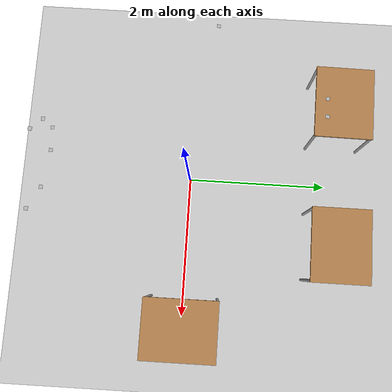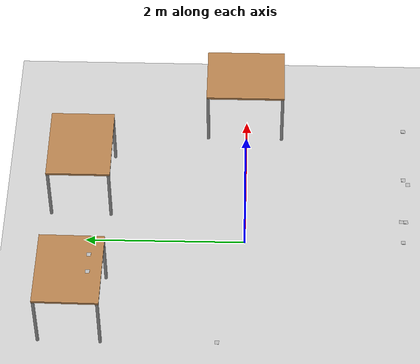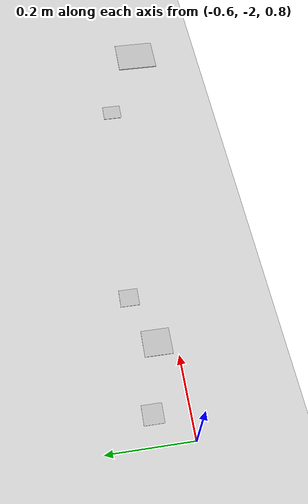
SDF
<sdf version="1.6">
 <world name="default">
  <plugin name="ros_link_attacher_plugin" filename="libgazebo_ros_link_attacher.so"/>
  <light name="sun" type="directional">
   <pose>0 0 10 0 -0 0</pose>
   <diffuse>0.8 0.8 0.8 1</diffuse>
   <specular>0.2 0.2 0.2 1</specular>
   <attenuation>
    <range>1000</range>
    <constant>0.9</constant>
    <linear>0.01</linear>
    <quadratic>0.001</quadratic>
   </attenuation>
   <direction>-0.5 0.1 -0.9</direction>
  </light>
  <model name="ground_plane">
   <static>1</static>
   <link name="link">
    <collision name="collision">
     <geometry><plane><normal>0 0 1</normal><size>100 100</size></plane></geometry>
     <surface>
      <contact><collide_bitmask>65535</collide_bitmask></contact>
      <friction><ode><mu>100</mu><mu2>50</mu2></ode></friction>
     </surface>
    </collision>
    <visual name="visual">
     <cast_shadows>0</cast_shadows>
     <geometry><plane><normal>0 0 1</normal><size>100 100</size></plane></geometry>
     <material>
      <script><uri>file://media/materials/scripts/gazebo.material</uri><name>Gazebo/Grey</name></script>
     </material>
    </visual>
   </link>
  </model>
  <gravity>0 0 -9.8</gravity>
  <magnetic_field>6e-06 2.3e-05 -4.2e-05</magnetic_field>
  <atmosphere type="adiabatic"/>
  <physics name="default_physics" default="0" type="ode">
   <max_step_size>0.001</max_step_size>
   <real_time_factor>1</real_time_factor>
   <real_time_update_rate>1000</real_time_update_rate>
  </physics>
  <scene><ambient>0.4 0.4 0.4 1</ambient><background>0.7 0.7 0.7 1</background><shadows>1</shadows></scene>
  <audio><device>default</device></audio>
  <spherical_coordinates>
   <surface_model>EARTH_WGS84</surface_model>
   <latitude_deg>0</latitude_deg>
   <longitude_deg>0</longitude_deg>
   <elevation>0</elevation>
   <heading_deg>0</heading_deg>
  </spherical_coordinates>
  <model name="table">
   <static>1</static>
   <link name="link">
    <collision name="surface">
     <pose>0 0 0.8 0 -0 0</pose>
     <geometry><box><size>1 0.8 0.03</size></box></geometry>
    </collision>
    <visual name="visual1">
     <pose>0 0 0.8 0 -0 0</pose>
     <geometry><box><size>1 0.8 0.03</size></box></geometry>
     <material>
      <script><uri>file://media/materials/scripts/gazebo.material</uri><name>Gazebo/Wood</name></script>
     </material>
    </visual>
    <collision name="front_left_leg">
     <pose>0.48 0.38 0.4 0 -0 0</pose>
     <geometry><cylinder><radius>0.02</radius><length>0.8</length></cylinder></geometry>
    </collision>
    <visual name="front_left_leg">
     <pose>0.48 0.38 0.4 0 -0 0</pose>
     <geometry><cylinder><radius>0.02</radius><length>0.8</length></cylinder></geometry>
     <material>
      <script><uri>file://media/materials/scripts/gazebo.material</uri><name>Gazebo/Grey</name></script>
     </material>
    </visual>
    <collision name="front_right_leg">
     <pose>0.48 -0.38 0.4 0 -0 0</pose>
     <geometry><cylinder><radius>0.02</radius><length>0.8</length></cylinder></geometry>
    </collision>
    <visual name="front_right_leg">
     <pose>0.48 -0.38 0.4 0 -0 0</pose>
     <geometry><cylinder><radius>0.02</radius><length>0.8</length></cylinder></geometry>
     <material>
      <script><uri>file://media/materials/scripts/gazebo.material</uri><name>Gazebo/Grey</name></script>
     </material>
    </visual>
    <collision name="back_right_leg">
     <pose>-0.48 -0.38 0.4 0 -0 0</pose>
     <geometry><cylinder><radius>0.02</radius><length>0.8</length></cylinder></geometry>
    </collision>
    <visual name="back_right_leg">
     <pose>-0.48 -0.38 0.4 0 -0 0</pose>
     <geometry><cylinder><radius>0.02</radius><length>0.8</length></cylinder></geometry>
     <material>
      <script><uri>file://media/materials/scripts/gazebo.material</uri><name>Gazebo/Grey</name></script>
     </material>
    </visual>
    <collision name="back_left_leg">
     <pose>-0.48 0.38 0.4 0 -0 0</pose>
     <geometry><cylinder><radius>0.02</radius><length>0.8</length></cylinder></geometry>
    </collision>
    <visual name="back_left_leg">
     <pose>-0.48 0.38 0.4 0 -0 0</pose>
     <geometry><cylinder><radius>0.02</radius><length>0.8</length></cylinder></geometry>
     <material>
      <script><uri>file://media/materials/scripts/gazebo.material</uri><name>Gazebo/Grey</name></script>
     </material>
    </visual>
    <velocity_decay><linear>0</linear><angular>0</angular></velocity_decay>
   </link>
   <pose>0.90199 2.08755 0 0 -0 3.14</pose>
  </model>
  <model name="table_0">
   <static>1</static>
   <link name="link">
    <collision name="surface">
     <pose>0 0 0.8 0 -0 0</pose>
     <geometry><box><size>1 0.8 0.03</size></box></geometry>
    </collision>
    <visual name="visual1">
     <pose>0 0 0.8 0 -0 0</pose>
     <geometry><box><size>1 0.8 0.03</size></box></geometry>
     <material>
      <script><uri>file://media/materials/scripts/gazebo.material</uri><name>Gazebo/Wood</name></script>
     </material>
    </visual>
    <collision name="front_left_leg">
     <pose>0.48 0.38 0.4 0 -0 0</pose>
     <geometry><cylinder><radius>0.02</radius><length>0.8</length></cylinder></geometry>
    </collision>
    <visual name="front_left_leg">
     <pose>0.48 0.38 0.4 0 -0 0</pose>
     <geometry><cylinder><radius>0.02</radius><length>0.8</length></cylinder></geometry>
     <material>
      <script><uri>file://media/materials/scripts/gazebo.material</uri><name>Gazebo/Grey</name></script>
     </material>
    </visual>
    <collision name="front_right_leg">
     <pose>0.48 -0.38 0.4 0 -0 0</pose>
     <geometry><cylinder><radius>0.02</radius><length>0.8</length></cylinder></geometry>
    </collision>
    <visual name="front_right_leg">
     <pose>0.48 -0.38 0.4 0 -0 0</pose>
     <geometry><cylinder><radius>0.02</radius><length>0.8</length></cylinder></geometry>
     <material>
      <script><uri>file://media/materials/scripts/gazebo.material</uri><name>Gazebo/Grey</name></script>
     </material>
    </visual>
    <collision name="back_right_leg">
     <pose>-0.48 -0.38 0.4 0 -0 0</pose>
     <geometry><cylinder><radius>0.02</radius><length>0.8</length></cylinder></geometry>
    </collision>
    <visual name="back_right_leg">
     <pose>-0.48 -0.38 0.4 0 -0 0</pose>
     <geometry><cylinder><radius>0.02</radius><length>0.8</length></cylinder></geometry>
     <material>
      <script><uri>file://media/materials/scripts/gazebo.material</uri><name>Gazebo/Grey</name></script>
     </material>
    </visual>
    <collision name="back_left_leg">
     <pose>-0.48 0.38 0.4 0 -0 0</pose>
     <geometry><cylinder><radius>0.02</radius><length>0.8</length></cylinder></geometry>
    </collision>
    <visual name="back_left_leg">
     <pose>-0.48 0.38 0.4 0 -0 0</pose>
     <geometry><cylinder><radius>0.02</radius><length>0.8</length></cylinder></geometry>
     <material>
      <script><uri>file://media/materials/scripts/gazebo.material</uri><name>Gazebo/Grey</name></script>
     </material>
    </visual>
    <velocity_decay><linear>0</linear><angular>0</angular></velocity_decay>
   </link>
   <pose>2.11403 0.023827 0 0 -0 1.57</pose>
  </model>
  <model name="table_1">
   <static>1</static>
   <link name="link">
    <collision name="surface">
     <pose>0 0 0.8 0 -0 0</pose>
     <geometry><box><size>1 0.8 0.03</size></box></geometry>
    </collision>
    <visual name="visual1">
     <pose>0 0 0.8 0 -0 0</pose>
     <geometry><box><size>1 0.8 0.03</size></box></geometry>
     <material>
      <script><uri>file://media/materials/scripts/gazebo.material</uri><name>Gazebo/Wood</name></script>
     </material>
    </visual>
    <collision name="front_left_leg">
     <pose>0.48 0.38 0.4 0 -0 0</pose>
     <geometry><cylinder><radius>0.02</radius><length>0.8</length></cylinder></geometry>
    </collision>
    <visual name="front_left_leg">
     <pose>0.48 0.38 0.4 0 -0 0</pose>
     <geometry><cylinder><radius>0.02</radius><length>0.8</length></cylinder></geometry>
     <material>
      <script><uri>file://media/materials/scripts/gazebo.material</uri><name>Gazebo/Grey</name></script>
     </material>
    </visual>
    <collision name="front_right_leg">
     <pose>0.48 -0.38 0.4 0 -0 0</pose>
     <geometry><cylinder><radius>0.02</radius><length>0.8</length></cylinder></geometry>
    </collision>
    <visual name="front_right_leg">
     <pose>0.48 -0.38 0.4 0 -0 0</pose>
     <geometry><cylinder><radius>0.02</radius><length>0.8</length></cylinder></geometry>
     <material>
      <script><uri>file://media/materials/scripts/gazebo.material</uri><name>Gazebo/Grey</name></script>
     </material>
    </visual>
    <collision name="back_right_leg">
     <pose>-0.48 -0.38 0.4 0 -0 0</pose>
     <geometry><cylinder><radius>0.02</radius><length>0.8</length></cylinder></geometry>
    </collision>
    <visual name="back_right_leg">
     <pose>-0.48 -0.38 0.4 0 -0 0</pose>
     <geometry><cylinder><radius>0.02</radius><length>0.8</length></cylinder></geometry>
     <material>
      <script><uri>file://media/materials/scripts/gazebo.material</uri><name>Gazebo/Grey</name></script>
     </material>
    </visual>
    <collision name="back_left_leg">
     <pose>-0.48 0.38 0.4 0 -0 0</pose>
     <geometry><cylinder><radius>0.02</radius><length>0.8</length></cylinder></geometry>
    </collision>
    <visual name="back_left_leg">
     <pose>-0.48 0.38 0.4 0 -0 0</pose>
     <geometry><cylinder><radius>0.02</radius><length>0.8</length></cylinder></geometry>
     <material>
      <script><uri>file://media/materials/scripts/gazebo.material</uri><name>Gazebo/Grey</name></script>
     </material>
    </visual>
    <velocity_decay><linear>0</linear><angular>0</angular></velocity_decay>
   </link>
   <pose>-1.0625 2.09391 0 0 -0 3.12841</pose>
  </model>
  <model name="aruco_marker_original_111">
   <static>0</static>
   <link name="marker">
    <inertial>
     <mass>0.1</mass>
     <inertia><ixx>0</ixx><ixy>0</ixy><ixz>0</ixz><iyy>0</iyy><iyz>0</iyz><izz>0</izz></inertia>
    </inertial>
    <visual name="visual">
     <pose>0 0 0 0 -0 1.57</pose>
     <geometry><box><size>0.05 0.05 0.001</size></box></geometry>
     <material>
      <script>
       <uri>model://aruco_marker_original_111/material/scripts</uri>
       <uri>model://aruco_marker_original_111/material/textures</uri>
       <name>Aruco/aruco_marker_original_111</name>
      </script>
     </material>
    </visual>
    <collision name="collision"><geometry><box><size>0.05 0.05 0.001</size></box></geometry></collision>
    <self_collide>1</self_collide>
   </link>
   <pose>0.36354 -1.94089 0.853753 -6e-06 -1e-06 3.14</pose>
  </model>
  <model name="aruco_marker_original_222">
   <static>0</static>
   <link name="marker">
    <inertial>
     <mass>0.1</mass>
     <inertia><ixx>0</ixx><ixy>0</ixy><ixz>0</ixz><iyy>0</iyy><iyz>0</iyz><izz>0</izz></inertia>
    </inertial>
    <visual name="visual">
     <pose>0 0 0 0 -0 1.57</pose>
     <geometry><box><size>0.05 0.05 0.001</size></box></geometry>
     <material>
      <script>
       <uri>model://aruco_marker_original_222/material/scripts</uri>
       <uri>model://aruco_marker_original_222/material/textures</uri>
       <name>Aruco/aruco_marker_original_222</name>
      </script>
     </material>
    </visual>
    <collision name="collision"><geometry><box><size>0.05 0.05 0.001</size></box></geometry></collision>
    <self_collide>1</self_collide>
   </link>
   <pose>0.715521 -1.91498 1.36018 -2e-06 -1e-06 3.14</pose>
  </model>
  <model name="aruco_marker_original_444">
   <static>0</static>
   <link name="marker">
    <inertial>
     <mass>0.1</mass>
     <inertia><ixx>0</ixx><ixy>0</ixy><ixz>0</ixz><iyy>0</iyy><iyz>0</iyz><izz>0</izz></inertia>
    </inertial>
    <visual name="visual">
     <pose>0 0 0 0 -0 1.57</pose>
     <geometry><box><size>0.05 0.05 0.001</size></box></geometry>
     <material>
      <script>
       <uri>model://aruco_marker_original_444/material/scripts</uri>
       <uri>model://aruco_marker_original_444/material/textures</uri>
       <name>Aruco/aruco_marker_original_444</name>
      </script>
     </material>
    </visual>
    <collision name="collision"><geometry><box><size>0.05 0.05 0.001</size></box></geometry></collision>
    <self_collide>1</self_collide>
   </link>
   <pose>-0.499495 -1.9228 1.11049 2e-06 1e-05 3.14</pose>
  </model>
  <model name="aruco_marker_original_582">
   <static>0</static>
   <link name="marker">
    <inertial>
     <mass>0.1</mass>
     <inertia><ixx>0</ixx><ixy>0</ixy><ixz>0</ixz><iyy>0</iyy><iyz>0</iyz><izz>0</izz></inertia>
    </inertial>
    <visual name="visual">
     <pose>0 0 0 0 -0 1.57</pose>
     <geometry><box><size>0.05 0.05 0.001</size></box></geometry>
     <material>
      <script>
       <uri>model://aruco_marker_original_582/material/scripts</uri>
       <uri>model://aruco_marker_original_582/material/textures</uri>
       <name>Aruco/aruco_marker_original_582</name>
      </script>
     </material>
    </visual>
    <collision name="collision"><geometry><box><size>0.05 0.05 0.001</size></box></geometry></collision>
    <self_collide>1</self_collide>
   </link>
   <pose>-0.251242 -1.92505 1.5105 1e-06 9e-06 3.14</pose>
  </model>
  <model name="aruco_marker_original_333">
   <static>0</static>
   <link name="marker">
    <inertial>
     <mass>0.1</mass>
     <inertia><ixx>0</ixx><ixy>0</ixy><ixz>0</ixz><iyy>0</iyy><iyz>0</iyz><izz>0</izz></inertia>
    </inertial>
    <visual name="visual">
     <pose>0 0 0 0 -0 1.57</pose>
     <geometry><box><size>0.05 0.05 0.001</size></box></geometry>
     <material>
      <script>
       <uri>model://aruco_marker_original_333/material/scripts</uri>
       <uri>model://aruco_marker_original_333/material/textures</uri>
       <name>Aruco/aruco_marker_original_333</name>
      </script>
     </material>
    </visual>
    <collision name="collision"><geometry><box><size>0.05 0.05 0.001</size></box></geometry></collision>
    <self_collide>1</self_collide>
   </link>
   <pose>-0.179853 -1.91157 0.710491 -1.3e-05 -7e-06 0</pose>
  </model>
  <model name="aruco_marker_original_444_0">
   <static>0</static>
   <link name="marker">
    <inertial>
     <mass>0.1</mass>
     <inertia><ixx>0</ixx><ixy>0</ixy><ixz>0</ixz><iyy>0</iyy><iyz>0</iyz><izz>0</izz></inertia>
    </inertial>
    <visual name="visual">
     <pose>0 0 0 0 -0 1.57</pose>
     <geometry><box><size>0.05 0.05 0.001</size></box></geometry>
     <material>
      <script>
       <uri>model://aruco_marker_original_444/material/scripts</uri>
       <uri>model://aruco_marker_original_444/material/textures</uri>
       <name>Aruco/aruco_marker_original_444</name>
      </script>
     </material>
    </visual>
    <collision name="collision"><geometry><box><size>0.05 0.05 0.001</size></box></geometry></collision>
    <self_collide>1</self_collide>
   </link>
   <pose>-0.499495 -1.9228 0.710491 -8e-06 5e-06 3.14</pose>
  </model>
  <model name="aruco_marker_original_222_0">
   <static>0</static>
   <link name="marker">
    <inertial>
     <mass>0.1</mass>
     <inertia><ixx>0</ixx><ixy>0</ixy><ixz>0</ixz><iyy>0</iyy><iyz>0</iyz><izz>0</izz></inertia>
    </inertial>
    <visual name="visual">
     <pose>0 0 0 0 -0 1.57</pose>
     <geometry><box><size>0.05 0.05 0.001</size></box></geometry>
     <material>
      <script>
       <uri>model://aruco_marker_original_222/material/scripts</uri>
       <uri>model://aruco_marker_original_222/material/textures</uri>
       <name>Aruco/aruco_marker_original_222</name>
      </script>
     </material>
    </visual>
    <collision name="collision"><geometry><box><size>0.05 0.05 0.001</size></box></geometry></collision>
    <self_collide>1</self_collide>
   </link>
   <pose>-1.1035 1.8613 0.815501 -2.1e-05 3.5e-05 0</pose>
  </model>
  <model name="aruco_marker_original_444_1">
   <static>0</static>
   <link name="marker">
    <inertial>
     <mass>0.1</mass>
     <inertia><ixx>0</ixx><ixy>0</ixy><ixz>0</ixz><iyy>0</iyy><iyz>0</iyz><izz>0</izz></inertia>
    </inertial>
    <visual name="visual">
     <pose>0 0 0 0 -0 1.57</pose>
     <geometry><box><size>0.05 0.05 0.001</size></box></geometry>
     <material>
      <script>
       <uri>model://aruco_marker_original_444/material/scripts</uri>
       <uri>model://aruco_marker_original_444/material/textures</uri>
       <name>Aruco/aruco_marker_original_444</name>
      </script>
     </material>
    </visual>
    <collision name="collision"><geometry><box><size>0.05 0.05 0.001</size></box></geometry></collision>
    <self_collide>1</self_collide>
   </link>
   <pose>-0.846993 1.8613 0.815502 4.1e-05 2.7e-05 0</pose>
  </model>
  <model name="aruco_marker_original_111_0">
   <static>0</static>
   <link name="aruco_marker_original_111_0::marker">
    <inertial>
     <mass>0.1</mass>
     <inertia><ixx>0</ixx><ixy>0</ixy><ixz>0</ixz><iyy>0</iyy><iyz>0</iyz><izz>0</izz></inertia>
    </inertial>
    <visual name="visual">
     <pose>0 0 0 0 -0 1.57</pose>
     <geometry><box><size>0.05 0.05 0.001</size></box></geometry>
     <material>
      <script>
       <uri>model://aruco_marker_original_111/material/scripts</uri>
       <uri>model://aruco_marker_original_111/material/textures</uri>
       <name>Aruco/aruco_marker_original_111</name>
      </script>
     </material>
    </visual>
    <collision name="collision"><geometry><box><size>0.05 0.05 0.001</size></box></geometry></collision>
    <self_collide>1</self_collide>
    <gravity>0</gravity>
   </link>
   <pose>-2.08527 0.296775 0.80942 0.007576 0.004201 -0.045921</pose>
  </model>
 </world>
</sdf>
